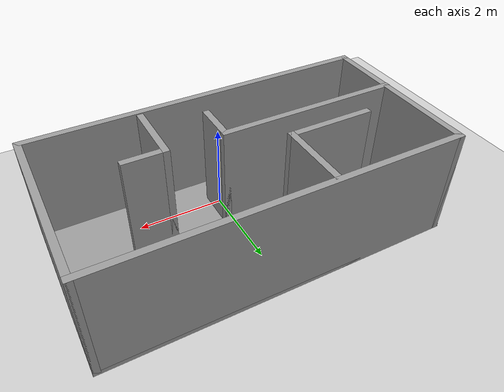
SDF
<sdf version="1.7">
 <world name="default">
  <light name="sun" type="directional">
   <pose>0 0 10 0 -0 0</pose>
   <diffuse>0.8 0.8 0.8 1</diffuse>
   <specular>0.2 0.2 0.2 1</specular>
   <attenuation>
    <range>1000</range>
    <constant>0.9</constant>
    <linear>0.01</linear>
    <quadratic>0.001</quadratic>
   </attenuation>
   <direction>-0.5 0.1 -0.9</direction>
   <spot><inner_angle>0</inner_angle><outer_angle>0</outer_angle><falloff>0</falloff></spot>
  </light>
  <model name="ground_plane">
   <static>1</static>
   <link name="link">
    <collision name="collision">
     <geometry><plane><normal>0 0 1</normal><size>100 100</size></plane></geometry>
     <surface>
      <contact><collide_bitmask>65535</collide_bitmask></contact>
      <friction><ode><mu>100</mu><mu2>50</mu2></ode></friction>
     </surface>
    </collision>
    <visual name="visual">
     <cast_shadows>0</cast_shadows>
     <geometry><plane><normal>0 0 1</normal><size>100 100</size></plane></geometry>
     <material>
      <script><uri>file://media/materials/scripts/gazebo.material</uri><name>Gazebo/Grey</name></script>
     </material>
    </visual>
   </link>
  </model>
  <gravity>0 0 -9.8</gravity>
  <magnetic_field>6e-06 2.3e-05 -4.2e-05</magnetic_field>
  <atmosphere type="adiabatic"/>
  <physics type="ode">
   <max_step_size>0.001</max_step_size>
   <real_time_factor>1</real_time_factor>
   <real_time_update_rate>1000</real_time_update_rate>
  </physics>
  <scene><ambient>0.4 0.4 0.4 1</ambient><background>0.7 0.7 0.7 1</background><shadows>1</shadows></scene>
  <audio><device>default</device></audio>
  <spherical_coordinates>
   <surface_model>EARTH_WGS84</surface_model>
   <latitude_deg>0</latitude_deg>
   <longitude_deg>0</longitude_deg>
   <elevation>0</elevation>
   <heading_deg>0</heading_deg>
  </spherical_coordinates>
  <model name="room">
   <pose>0.023696 -0.00759 0 0 -0 0</pose>
   <link name="Floor_0">
    <collision name="Floor_0_Collision">
     <geometry><box><size>8.01323 4 0.1</size></box></geometry>
     <pose>0 0 0.05 0 -0 0</pose>
    </collision>
    <visual name="Floor_0_Visual">
     <pose>0 0 0.05 0 -0 0</pose>
     <geometry><box><size>8.01323 4 0.1</size></box></geometry>
     <material>
      <script><uri>file://media/materials/scripts/gazebo.material</uri><name>Gazebo/Grey</name></script>
      <ambient>1 1 1 1</ambient>
     </material>
     <meta><layer>0</layer></meta>
    </visual>
    <pose>0 1.13183 0 0 -0 0</pose>
   </link>
   <link name="Wall_11">
    <collision name="Wall_11_Collision">
     <geometry><box><size>1.75 0.15 2.5</size></box></geometry>
     <pose>0 0 1.25 0 -0 0</pose>
    </collision>
    <visual name="Wall_11_Visual">
     <pose>0 0 1.25 0 -0 0</pose>
     <geometry><box><size>1.75 0.15 2.5</size></box></geometry>
     <material>
      <script><uri>file://media/materials/scripts/gazebo.material</uri><name>Gazebo/Grey</name></script>
      <ambient>1 1 1 1</ambient>
     </material>
     <meta><layer>0</layer></meta>
    </visual>
    <pose>-0.995663 2.24361 0 0 -0 -1.5708</pose>
   </link>
   <link name="Wall_12">
    <collision name="Wall_12_Collision">
     <geometry><box><size>2 0.15 2.5</size></box></geometry>
     <pose>0 0 1.25 0 -0 0</pose>
    </collision>
    <visual name="Wall_12_Visual">
     <pose>0 0 1.25 0 -0 0</pose>
     <geometry><box><size>2 0.15 2.5</size></box></geometry>
     <material>
      <script><uri>file://media/materials/scripts/gazebo.material</uri><name>Gazebo/Grey</name></script>
      <ambient>1 1 1 1</ambient>
     </material>
     <meta><layer>0</layer></meta>
    </visual>
    <pose>-1.92066 1.44361 0 0 -0 3.14159</pose>
   </link>
   <link name="Wall_14">
    <collision name="Wall_14_Collision">
     <geometry><box><size>4.25 0.15 2.5</size></box></geometry>
     <pose>0 0 1.25 0 -0 0</pose>
    </collision>
    <visual name="Wall_14_Visual">
     <pose>0 0 1.25 0 -0 0</pose>
     <geometry><box><size>4.25 0.15 2.5</size></box></geometry>
     <material>
      <script><uri>file://media/materials/scripts/gazebo.material</uri><name>Gazebo/Grey</name></script>
      <ambient>1 1 1 1</ambient>
     </material>
     <meta><layer>0</layer></meta>
    </visual>
    <pose>-1.88161 0.768909 0 0 -0 0</pose>
   </link>
   <link name="Wall_15">
    <collision name="Wall_15_Collision">
     <geometry><box><size>1 0.15 2.5</size></box></geometry>
     <pose>0 0 1.25 0 -0 0</pose>
    </collision>
    <visual name="Wall_15_Visual">
     <pose>0 0 1.25 0 -0 0</pose>
     <geometry><box><size>1 0.15 2.5</size></box></geometry>
     <material>
      <script><uri>file://media/materials/scripts/gazebo.material</uri><name>Gazebo/Grey</name></script>
      <ambient>1 1 1 1</ambient>
     </material>
     <meta><layer>0</layer></meta>
    </visual>
    <pose>0.168387 0.343909 0 0 -0 -1.5708</pose>
   </link>
   <link name="Wall_17">
    <collision name="Wall_17_Collision">
     <geometry><box><size>1.5 0.15 2.5</size></box></geometry>
     <pose>0 0 1.25 0 -0 0</pose>
    </collision>
    <visual name="Wall_17_Visual">
     <pose>0 0 1.25 0 -0 0</pose>
     <geometry><box><size>1.5 0.15 2.5</size></box></geometry>
     <material>
      <script><uri>file://media/materials/scripts/gazebo.material</uri><name>Gazebo/Grey</name></script>
      <ambient>1 1 1 1</ambient>
     </material>
     <meta><layer>0</layer></meta>
    </visual>
    <pose>1.45096 0.067459 0 0 -0 -1.5708</pose>
   </link>
   <link name="Wall_19">
    <collision name="Wall_19_Collision">
     <geometry><box><size>1 0.15 2.5</size></box></geometry>
     <pose>0 0 1.25 0 -0 0</pose>
    </collision>
    <visual name="Wall_19_Visual">
     <pose>0 0 1.25 0 -0 0</pose>
     <geometry><box><size>1 0.15 2.5</size></box></geometry>
     <material>
      <script><uri>file://media/materials/scripts/gazebo.material</uri><name>Gazebo/Grey</name></script>
      <ambient>1 1 1 1</ambient>
     </material>
     <meta><layer>0</layer></meta>
    </visual>
    <pose>1.87596 0.742459 0 0 -0 0</pose>
   </link>
   <link name="Wall_6">
    <collision name="Wall_6_Collision">
     <geometry><box><size>8 0.15 2.5</size></box></geometry>
     <pose>0 0 1.25 0 -0 0</pose>
    </collision>
    <visual name="Wall_6_Visual">
     <pose>0 0 1.25 0 -0 0</pose>
     <geometry><box><size>8 0.15 2.5</size></box></geometry>
     <material>
      <script><uri>file://media/materials/scripts/gazebo.material</uri><name>Gazebo/Grey</name></script>
      <ambient>1 1 1 1</ambient>
     </material>
     <meta><layer>0</layer></meta>
    </visual>
    <pose>0.006612 3.05683 0 0 -0 0</pose>
   </link>
   <link name="Wall_7">
    <collision name="Wall_7_Collision">
     <geometry><box><size>4 0.15 2.5</size></box></geometry>
     <pose>0 0 1.25 0 -0 0</pose>
    </collision>
    <visual name="Wall_7_Visual">
     <pose>0 0 1.25 0 -0 0</pose>
     <geometry><box><size>4 0.15 2.5</size></box></geometry>
     <material>
      <script><uri>file://media/materials/scripts/gazebo.material</uri><name>Gazebo/Grey</name></script>
      <ambient>1 1 1 1</ambient>
     </material>
     <meta><layer>0</layer></meta>
    </visual>
    <pose>3.93161 1.13183 0 0 -0 -1.5708</pose>
   </link>
   <link name="Wall_8">
    <collision name="Wall_8_Collision">
     <geometry><box><size>8 0.15 2.5</size></box></geometry>
     <pose>0 0 1.25 0 -0 0</pose>
    </collision>
    <visual name="Wall_8_Visual">
     <pose>0 0 1.25 0 -0 0</pose>
     <geometry><box><size>8 0.15 2.5</size></box></geometry>
     <material>
      <script><uri>file://media/materials/scripts/gazebo.material</uri><name>Gazebo/Grey</name></script>
      <ambient>1 1 1 1</ambient>
     </material>
     <meta><layer>0</layer></meta>
    </visual>
    <pose>0.006612 -0.793166 0 0 -0 3.14159</pose>
   </link>
   <link name="Wall_9">
    <collision name="Wall_9_Collision">
     <geometry><box><size>4 0.15 2.5</size></box></geometry>
     <pose>0 0 1.25 0 -0 0</pose>
    </collision>
    <visual name="Wall_9_Visual">
     <pose>0 0 1.25 0 -0 0</pose>
     <geometry><box><size>4 0.15 2.5</size></box></geometry>
     <material>
      <script><uri>file://media/materials/scripts/gazebo.material</uri><name>Gazebo/Grey</name></script>
      <ambient>1 1 1 1</ambient>
     </material>
     <meta><layer>0</layer></meta>
    </visual>
    <pose>-3.91839 1.13183 0 0 -0 1.5708</pose>
   </link>
   <static>1</static>
  </model>
 </world>
</sdf>
